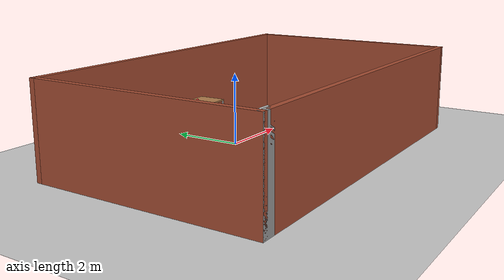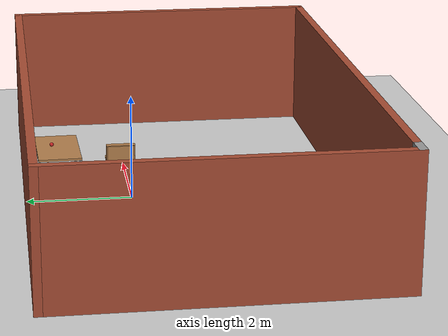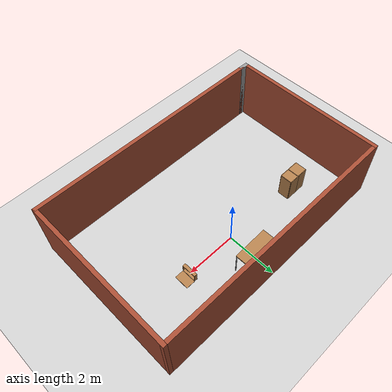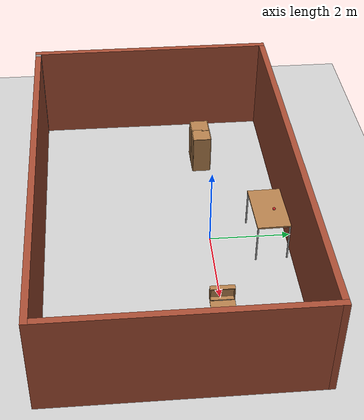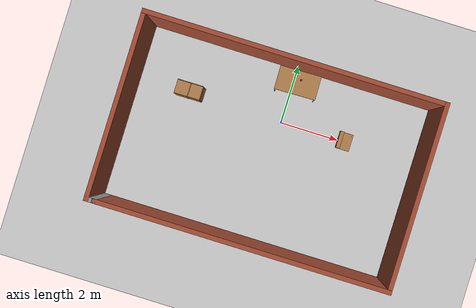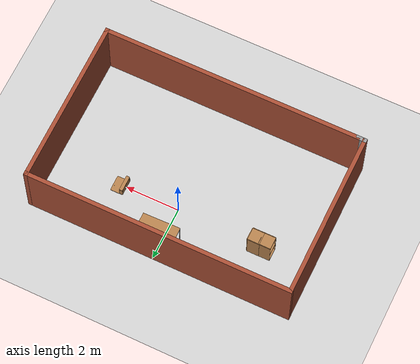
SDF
<sdf version="1.6">
 <world name="default">
  <light name="sun" type="directional">
   <pose>0 0 10 0 -0 0</pose>
   <diffuse>0.8 0.8 0.8 1</diffuse>
   <specular>0.1 0.1 0.1 1</specular>
   <attenuation>
    <range>1000</range>
    <constant>0.9</constant>
    <linear>0.01</linear>
    <quadratic>0.001</quadratic>
   </attenuation>
   <direction>-0.5 0.5 -1</direction>
  </light>
  <model name="ground_plane">
   <static>1</static>
   <link name="link">
    <collision name="collision">
     <geometry><plane><normal>0 0 1</normal><size>100 100</size></plane></geometry>
     <surface><friction><ode><mu>100</mu><mu2>50</mu2></ode></friction></surface>
    </collision>
    <visual name="visual">
     <cast_shadows>0</cast_shadows>
     <geometry><plane><normal>0 0 1</normal><size>100 100</size></plane></geometry>
     <material>
      <script><uri>file://media/materials/scripts/gazebo.material</uri><name>Gazebo/Grey</name></script>
     </material>
    </visual>
   </link>
  </model>
  <gravity>0 0 -9.8</gravity>
  <magnetic_field>6e-06 2.3e-05 -4.2e-05</magnetic_field>
  <atmosphere type="adiabatic"/>
  <physics name="default_physics" default="0" type="ode">
   <max_step_size>0.001</max_step_size>
   <real_time_factor>1</real_time_factor>
   <real_time_update_rate>1000</real_time_update_rate>
  </physics>
  <scene><ambient>0.4 0.4 0.4 1</ambient><background>0.7 0.7 0.7 1</background><shadows>1</shadows></scene>
  <spherical_coordinates>
   <surface_model>EARTH_WGS84</surface_model>
   <latitude_deg>0</latitude_deg>
   <longitude_deg>0</longitude_deg>
   <elevation>0</elevation>
   <heading_deg>0</heading_deg>
  </spherical_coordinates>
  <model name="table">
   <static>0</static>
   <link name="link">
    <collision name="surface">
     <pose>0 0 1 0 -0 0</pose>
     <geometry><box><size>1.5 0.8 0.03</size></box></geometry>
     <surface><friction><ode><mu>0.6</mu><mu2>0.6</mu2></ode></friction></surface>
    </collision>
    <visual name="visual1">
     <pose>0 0 1 0 -0 0</pose>
     <geometry><box><size>1.4 0.8 0.04</size></box></geometry>
     <material>
      <script><uri>file://media/materials/scripts/gazebo.material</uri><name>Gazebo/Wood</name></script>
     </material>
    </visual>
    <collision name="front_left_leg">
     <pose>0.68 0.38 0.5 0 -0 0</pose>
     <geometry><cylinder><radius>0.02</radius><length>1</length></cylinder></geometry>
    </collision>
    <visual name="front_left_leg">
     <pose>0.68 0.38 0.5 0 -0 0</pose>
     <geometry><cylinder><radius>0.02</radius><length>1</length></cylinder></geometry>
     <material>
      <script><uri>file://media/materials/scripts/gazebo.material</uri><name>Gazebo/Grey</name></script>
     </material>
    </visual>
    <collision name="front_right_leg">
     <pose>0.68 -0.38 0.5 0 -0 0</pose>
     <geometry><cylinder><radius>0.02</radius><length>1</length></cylinder></geometry>
    </collision>
    <visual name="front_right_leg">
     <pose>0.68 -0.38 0.5 0 -0 0</pose>
     <geometry><cylinder><radius>0.02</radius><length>1</length></cylinder></geometry>
     <material>
      <script><uri>file://media/materials/scripts/gazebo.material</uri><name>Gazebo/Grey</name></script>
     </material>
    </visual>
    <collision name="back_right_leg">
     <pose>-0.68 -0.38 0.5 0 -0 0</pose>
     <geometry><cylinder><radius>0.02</radius><length>1</length></cylinder></geometry>
    </collision>
    <visual name="back_right_leg">
     <pose>-0.68 -0.38 0.5 0 -0 0</pose>
     <geometry><cylinder><radius>0.02</radius><length>1</length></cylinder></geometry>
     <material>
      <script><uri>file://media/materials/scripts/gazebo.material</uri><name>Gazebo/Grey</name></script>
     </material>
    </visual>
    <collision name="back_left_leg">
     <pose>-0.68 0.38 0.5 0 -0 0</pose>
     <geometry><cylinder><radius>0.02</radius><length>1</length></cylinder></geometry>
    </collision>
    <visual name="back_left_leg">
     <pose>-0.68 0.38 0.5 0 -0 0</pose>
     <geometry><cylinder><radius>0.02</radius><length>1</length></cylinder></geometry>
     <material>
      <script><uri>file://media/materials/scripts/gazebo.material</uri><name>Gazebo/Grey</name></script>
     </material>
    </visual>
    <inertial>
     <inertia><ixx>1</ixx><ixy>0</ixy><ixz>0</ixz><iyy>1</iyy><iyz>0</iyz><izz>1</izz></inertia>
     <mass>1</mass>
    </inertial>
   </link>
   <pose>0.133701 1.38314 0 0 -0 0.022122</pose>
  </model>
  <model name="cricket_ball">
   <link name="link">
    <pose>0 0 0.0375 0 -0 0</pose>
    <inertial>
     <mass>0.1467</mass>
     <inertia>
      <ixx>8.25187e-05</ixx>
      <ixy>0</ixy>
      <ixz>0</ixz>
      <iyy>8.25187e-05</iyy>
      <iyz>0</iyz>
      <izz>8.25187e-05</izz>
     </inertia>
    </inertial>
    <collision name="collision">
     <geometry><sphere><radius>0.0375</radius></sphere></geometry>
     <surface>
      <contact>
       <poissons_ratio>0.347</poissons_ratio>
       <elastic_modulus>8.8e+09</elastic_modulus>
       <ode><kp>100000</kp><kd>100</kd><max_vel>100</max_vel><min_depth>0.001</min_depth></ode>
      </contact>
      <friction>
       <torsional>
        <coefficient>1</coefficient>
        <use_patch_radius>0</use_patch_radius>
        <surface_radius>0.01</surface_radius>
       </torsional>
      </friction>
     </surface>
    </collision>
    <visual name="visual">
     <geometry><sphere><radius>0.0375</radius></sphere></geometry>
     <material>
      <script><uri>file://media/materials/scripts/gazebo.material</uri><name>Gazebo/Red</name></script>
     </material>
    </visual>
    <velocity_decay><linear>0</linear><angular>0.005</angular></velocity_decay>
   </link>
   <pose>0.2227 1.47846 1.01781 -0.356125 -0.164599 0.03857</pose>
  </model>
  <model name="myRoom">
   <pose>-0.172927 -1.08456 0 0 -0 0</pose>
   <link name="Wall_10">
    <collision name="Wall_10_Collision">
     <geometry><box><size>0.4 0.15 2.5</size></box></geometry>
     <pose>0 0 1.25 0 -0 0</pose>
    </collision>
    <visual name="Wall_10_Visual">
     <pose>0 0 1.25 0 -0 0</pose>
     <geometry><box><size>0.4 0.15 2.5</size></box></geometry>
     <material>
      <script><uri>file://media/materials/scripts/gazebo.material</uri><name>Gazebo/Grey</name></script>
      <ambient>1 1 1 1</ambient>
     </material>
    </visual>
    <pose>-4.8 -3.05 0 0 -0 0</pose>
   </link>
   <link name="Wall_6">
    <collision name="Wall_6_Collision">
     <geometry><box><size>9.75 0.15 2.5</size></box></geometry>
     <pose>0 0 1.25 0 -0 0</pose>
    </collision>
    <visual name="Wall_6_Visual">
     <pose>0 0 1.25 0 -0 0</pose>
     <geometry><box><size>9.75 0.15 2.5</size></box></geometry>
     <material>
      <script><uri>file://media/materials/scripts/gazebo.material</uri><name>Gazebo/Bricks</name></script>
      <ambient>1 1 1 1</ambient>
     </material>
    </visual>
    <pose>0.125 -3.05 0 0 -0 0</pose>
   </link>
   <link name="Wall_7">
    <collision name="Wall_7_Collision">
     <geometry><box><size>6.25 0.15 2.5</size></box></geometry>
     <pose>0 0 1.25 0 -0 0</pose>
    </collision>
    <visual name="Wall_7_Visual">
     <pose>0 0 1.25 0 -0 0</pose>
     <geometry><box><size>6.25 0.15 2.5</size></box></geometry>
     <material>
      <script><uri>file://media/materials/scripts/gazebo.material</uri><name>Gazebo/Bricks</name></script>
      <ambient>1 1 1 1</ambient>
     </material>
    </visual>
    <pose>4.925 0 0 0 -0 1.5708</pose>
   </link>
   <link name="Wall_8">
    <collision name="Wall_8_Collision">
     <geometry><box><size>10 0.15 2.5</size></box></geometry>
     <pose>0 0 1.25 0 -0 0</pose>
    </collision>
    <visual name="Wall_8_Visual">
     <pose>0 0 1.25 0 -0 0</pose>
     <geometry><box><size>10 0.15 2.5</size></box></geometry>
     <material>
      <script><uri>file://media/materials/scripts/gazebo.material</uri><name>Gazebo/Bricks</name></script>
      <ambient>1 1 1 1</ambient>
     </material>
    </visual>
    <pose>0 3.05 0 0 -0 3.14159</pose>
   </link>
   <link name="Wall_9">
    <collision name="Wall_9_Collision">
     <geometry><box><size>6.25 0.15 2.5</size></box></geometry>
     <pose>0 0 1.25 0 -0 0</pose>
    </collision>
    <visual name="Wall_9_Visual">
     <pose>0 0 1.25 0 -0 0</pose>
     <geometry><box><size>6.25 0.15 2.5</size></box></geometry>
     <material>
      <script><uri>file://media/materials/scripts/gazebo.material</uri><name>Gazebo/Bricks</name></script>
      <ambient>1 1 1 1</ambient>
     </material>
    </visual>
    <pose>-4.925 0 0 0 0 -1.5708</pose>
   </link>
   <static>1</static>
  </model>
  <model name="cabinet">
   <static>1</static>
   <link name="cabinet_bottom_plate">
    <inertial>
     <pose>0 0 -1 0 -0 0</pose>
     <inertia><ixx>2.05</ixx><ixy>0</ixy><ixz>0</ixz><iyy>2.05</iyy><iyz>0</iyz><izz>2.05</izz></inertia>
     <mass>25</mass>
    </inertial>
    <collision name="cabinet_bottom_plate_geom">
     <pose>0 0 0.01 0 -0 0</pose>
     <geometry><box><size>0.45 0.45 0.02</size></box></geometry>
    </collision>
    <visual name="cabinet_bottom_plate_geom_visual">
     <pose>0 0 0.01 0 -0 0</pose>
     <geometry><box><size>0.45 0.45 0.02</size></box></geometry>
     <material>
      <script><uri>file://media/materials/scripts/gazebo.material</uri><name>Gazebo/Wood</name></script>
     </material>
    </visual>
    <collision name="cabinet_bottom_plate_geom_cabinet_back_plate">
     <pose>0.235 0 0.51 0 -0 0</pose>
     <geometry><box><size>0.02 0.45 1.02</size></box></geometry>
    </collision>
    <visual name="cabinet_bottom_plate_geom_cabinet_back_plate_visual">
     <pose>0.235 0 0.51 0 -0 0</pose>
     <geometry><box><size>0.02 0.45 1.02</size></box></geometry>
     <material>
      <script><uri>file://media/materials/scripts/gazebo.material</uri><name>Gazebo/Wood</name></script>
     </material>
    </visual>
    <collision name="cabinet_bottom_plate_geom_cabinet_left_plate">
     <pose>0 0.235 0.51 0 -0 0</pose>
     <geometry><box><size>0.45 0.02 1.02</size></box></geometry>
    </collision>
    <visual name="cabinet_bottom_plate_geom_cabinet_left_plate_visual">
     <pose>0 0.235 0.51 0 -0 0</pose>
     <geometry><box><size>0.45 0.02 1.02</size></box></geometry>
     <material>
      <script><uri>file://media/materials/scripts/gazebo.material</uri><name>Gazebo/Wood</name></script>
     </material>
    </visual>
    <collision name="cabinet_bottom_plate_geom_cabinet_middle_plate">
     <pose>0 0 0.51 0 -0 0</pose>
     <geometry><box><size>0.45 0.45 0.02</size></box></geometry>
    </collision>
    <visual name="cabinet_bottom_plate_geom_cabinet_middle_plate_visual">
     <pose>0 0 0.51 0 -0 0</pose>
     <geometry><box><size>0.45 0.45 0.02</size></box></geometry>
     <material>
      <script><uri>file://media/materials/scripts/gazebo.material</uri><name>Gazebo/Wood</name></script>
     </material>
    </visual>
    <collision name="cabinet_bottom_plate_geom_cabinet_right_plate">
     <pose>0 -0.235 0.51 0 -0 0</pose>
     <geometry><box><size>0.45 0.02 1.02</size></box></geometry>
    </collision>
    <visual name="cabinet_bottom_plate_geom_cabinet_right_plate_visual">
     <pose>0 -0.235 0.51 0 -0 0</pose>
     <geometry><box><size>0.45 0.02 1.02</size></box></geometry>
     <material>
      <script><uri>file://media/materials/scripts/gazebo.material</uri><name>Gazebo/Wood</name></script>
     </material>
    </visual>
    <collision name="cabinet_bottom_plate_geom_cabinet_top_plate">
     <pose>0 0 1.01 0 -0 0</pose>
     <geometry><box><size>0.45 0.45 0.02</size></box></geometry>
    </collision>
    <visual name="cabinet_bottom_plate_geom_cabinet_top_plate_visual">
     <pose>0 0 1.01 0 -0 0</pose>
     <geometry><box><size>0.45 0.45 0.02</size></box></geometry>
     <material>
      <script><uri>file://media/materials/scripts/gazebo.material</uri><name>Gazebo/Wood</name></script>
     </material>
    </visual>
   </link>
   <pose>-3.4399 0.104103 0 0 -0 0</pose>
  </model>
  <model name="cabinet_2">
   <static>1</static>
   <link name="cabinet_bottom_plate">
    <inertial>
     <pose>0 0 -1 0 -0 0</pose>
     <inertia><ixx>2.05</ixx><ixy>0</ixy><ixz>0</ixz><iyy>2.05</iyy><iyz>0</iyz><izz>2.05</izz></inertia>
     <mass>25</mass>
    </inertial>
    <collision name="cabinet_bottom_plate_geom">
     <pose>0 0 0.01 0 -0 0</pose>
     <geometry><box><size>0.45 0.45 0.02</size></box></geometry>
    </collision>
    <visual name="cabinet_bottom_plate_geom_visual">
     <pose>0 0 0.01 0 -0 0</pose>
     <geometry><box><size>0.45 0.45 0.02</size></box></geometry>
     <material>
      <script><uri>file://media/materials/scripts/gazebo.material</uri><name>Gazebo/Wood</name></script>
     </material>
    </visual>
    <collision name="cabinet_bottom_plate_geom_cabinet_back_plate">
     <pose>0.235 0 0.51 0 -0 0</pose>
     <geometry><box><size>0.02 0.45 1.02</size></box></geometry>
    </collision>
    <visual name="cabinet_bottom_plate_geom_cabinet_back_plate_visual">
     <pose>0.235 0 0.51 0 -0 0</pose>
     <geometry><box><size>0.02 0.45 1.02</size></box></geometry>
     <material>
      <script><uri>file://media/materials/scripts/gazebo.material</uri><name>Gazebo/Wood</name></script>
     </material>
    </visual>
    <collision name="cabinet_bottom_plate_geom_cabinet_left_plate">
     <pose>0 0.235 0.51 0 -0 0</pose>
     <geometry><box><size>0.45 0.02 1.02</size></box></geometry>
    </collision>
    <visual name="cabinet_bottom_plate_geom_cabinet_left_plate_visual">
     <pose>0 0.235 0.51 0 -0 0</pose>
     <geometry><box><size>0.45 0.02 1.02</size></box></geometry>
     <material>
      <script><uri>file://media/materials/scripts/gazebo.material</uri><name>Gazebo/Wood</name></script>
     </material>
    </visual>
    <collision name="cabinet_bottom_plate_geom_cabinet_middle_plate">
     <pose>0 0 0.51 0 -0 0</pose>
     <geometry><box><size>0.45 0.45 0.02</size></box></geometry>
    </collision>
    <visual name="cabinet_bottom_plate_geom_cabinet_middle_plate_visual">
     <pose>0 0 0.51 0 -0 0</pose>
     <geometry><box><size>0.45 0.45 0.02</size></box></geometry>
     <material>
      <script><uri>file://media/materials/scripts/gazebo.material</uri><name>Gazebo/Wood</name></script>
     </material>
    </visual>
    <collision name="cabinet_bottom_plate_geom_cabinet_right_plate">
     <pose>0 -0.235 0.51 0 -0 0</pose>
     <geometry><box><size>0.45 0.02 1.02</size></box></geometry>
    </collision>
    <visual name="cabinet_bottom_plate_geom_cabinet_right_plate_visual">
     <pose>0 -0.235 0.51 0 -0 0</pose>
     <geometry><box><size>0.45 0.02 1.02</size></box></geometry>
     <material>
      <script><uri>file://media/materials/scripts/gazebo.material</uri><name>Gazebo/Wood</name></script>
     </material>
    </visual>
    <collision name="cabinet_bottom_plate_geom_cabinet_top_plate">
     <pose>0 0 1.01 0 -0 0</pose>
     <geometry><box><size>0.45 0.45 0.02</size></box></geometry>
    </collision>
    <visual name="cabinet_bottom_plate_geom_cabinet_top_plate_visual">
     <pose>0 0 1.01 0 -0 0</pose>
     <geometry><box><size>0.45 0.45 0.02</size></box></geometry>
     <material>
      <script><uri>file://media/materials/scripts/gazebo.material</uri><name>Gazebo/Wood</name></script>
     </material>
    </visual>
   </link>
   <pose>-3.02384 0.108165 0 0 -0 0</pose>
  </model>
  <model name="wooden_case_0">
   <link name="base">
    <pose>0 0 0.024 0 -0 0</pose>
    <inertial>
     <pose>-0.022184 0 0.171592 0 -0 0</pose>
     <mass>3.96264</mass>
     <inertia>
      <ixx>0.213536</ixx>
      <ixy>0</ixy>
      <ixz>0.000779377</ixz>
      <iyy>0.0708943</iyy>
      <iyz>0</iyz>
      <izz>0.154604</izz>
     </inertia>
    </inertial>
    <collision name="collision_back">
     <pose>-0.053975 0 0.1778 0 -0 0</pose>
     <geometry><box><size>0.01905 0.5461 0.3175</size></box></geometry>
     <surface>
      <contact>
       <poissons_ratio>0.347</poissons_ratio>
       <elastic_modulus>8.8e+09</elastic_modulus>
       <ode><kp>100000</kp><kd>100</kd><max_vel>100</max_vel><min_depth>0.001</min_depth></ode>
      </contact>
      <friction>
       <torsional>
        <coefficient>1</coefficient>
        <use_patch_radius>0</use_patch_radius>
        <surface_radius>0.01</surface_radius>
       </torsional>
      </friction>
     </surface>
    </collision>
    <visual name="visual_back">
     <pose>-0.053975 0 0.1778 0 -0 0</pose>
     <geometry><box><size>0.01905 0.5461 0.3175</size></box></geometry>
     <material>
      <script><uri>file://media/materials/scripts/gazebo.material</uri><name>Gazebo/Wood</name></script>
     </material>
    </visual>
    <collision name="collision_bottom">
     <pose>0 0 0.009525 0 -0 0</pose>
     <geometry><box><size>0.127 0.5842 0.01905</size></box></geometry>
     <surface>
      <contact>
       <poissons_ratio>0.347</poissons_ratio>
       <elastic_modulus>8.8e+09</elastic_modulus>
       <ode><kp>100000</kp><kd>100</kd><max_vel>100</max_vel><min_depth>0.001</min_depth></ode>
      </contact>
      <friction>
       <torsional>
        <coefficient>1</coefficient>
        <use_patch_radius>0</use_patch_radius>
        <surface_radius>0.01</surface_radius>
       </torsional>
      </friction>
     </surface>
    </collision>
    <visual name="visual_bottom">
     <pose>0 0 0.009525 0 -0 0</pose>
     <geometry><box><size>0.127 0.5842 0.01905</size></box></geometry>
     <material>
      <script><uri>file://media/materials/scripts/gazebo.material</uri><name>Gazebo/Wood</name></script>
     </material>
    </visual>
    <collision name="collision_top">
     <pose>0 0 0.346075 0 -0 0</pose>
     <geometry><box><size>0.127 0.5842 0.01905</size></box></geometry>
     <surface>
      <contact>
       <poissons_ratio>0.347</poissons_ratio>
       <elastic_modulus>8.8e+09</elastic_modulus>
       <ode><kp>100000</kp><kd>100</kd><max_vel>100</max_vel><min_depth>0.001</min_depth></ode>
      </contact>
      <friction>
       <torsional>
        <coefficient>1</coefficient>
        <use_patch_radius>0</use_patch_radius>
        <surface_radius>0.01</surface_radius>
       </torsional>
      </friction>
     </surface>
    </collision>
    <visual name="visual_top">
     <pose>0 0 0.346075 0 -0 0</pose>
     <geometry><box><size>0.127 0.5842 0.01905</size></box></geometry>
     <material>
      <script><uri>file://media/materials/scripts/gazebo.material</uri><name>Gazebo/Wood</name></script>
     </material>
    </visual>
    <collision name="collision_left">
     <pose>0 -0.282575 0.1778 0 -0 0</pose>
     <geometry><box><size>0.127 0.01905 0.3175</size></box></geometry>
     <surface>
      <contact>
       <poissons_ratio>0.347</poissons_ratio>
       <elastic_modulus>8.8e+09</elastic_modulus>
       <ode><kp>100000</kp><kd>100</kd><max_vel>100</max_vel><min_depth>0.001</min_depth></ode>
      </contact>
      <friction>
       <torsional>
        <coefficient>1</coefficient>
        <use_patch_radius>0</use_patch_radius>
        <surface_radius>0.01</surface_radius>
       </torsional>
      </friction>
     </surface>
    </collision>
    <visual name="visual_left">
     <pose>0 -0.282575 0.1778 0 -0 0</pose>
     <geometry><box><size>0.127 0.01905 0.3175</size></box></geometry>
     <material>
      <script><uri>file://media/materials/scripts/gazebo.material</uri><name>Gazebo/Wood</name></script>
     </material>
    </visual>
    <collision name="collision_right">
     <pose>0 0.282575 0.1778 0 -0 0</pose>
     <geometry><box><size>0.127 0.01905 0.3175</size></box></geometry>
     <surface>
      <contact>
       <poissons_ratio>0.347</poissons_ratio>
       <elastic_modulus>8.8e+09</elastic_modulus>
       <ode><kp>100000</kp><kd>100</kd><max_vel>100</max_vel><min_depth>0.001</min_depth></ode>
      </contact>
      <friction>
       <torsional>
        <coefficient>1</coefficient>
        <use_patch_radius>0</use_patch_radius>
        <surface_radius>0.01</surface_radius>
       </torsional>
      </friction>
     </surface>
    </collision>
    <visual name="visual_right">
     <pose>0 0.282575 0.1778 0 -0 0</pose>
     <geometry><box><size>0.127 0.01905 0.3175</size></box></geometry>
     <material>
      <script><uri>file://media/materials/scripts/gazebo.material</uri><name>Gazebo/Wood</name></script>
     </material>
    </visual>
    <collision name="collision_block_left">
     <pose>0.0095 -0.2151 -0.012 0 -0 0</pose>
     <geometry><box><size>0.108 0.05 0.024</size></box></geometry>
     <surface>
      <contact>
       <poissons_ratio>0.347</poissons_ratio>
       <elastic_modulus>8.8e+09</elastic_modulus>
       <ode><kp>100000</kp><kd>100</kd><max_vel>100</max_vel><min_depth>0.001</min_depth></ode>
      </contact>
      <friction>
       <torsional>
        <coefficient>1</coefficient>
        <use_patch_radius>0</use_patch_radius>
        <surface_radius>0.01</surface_radius>
       </torsional>
      </friction>
     </surface>
    </collision>
    <visual name="visual_block_left">
     <pose>0.0095 -0.2151 -0.012 0 -0 0</pose>
     <geometry><box><size>0.108 0.05 0.024</size></box></geometry>
     <material>
      <script><uri>file://media/materials/scripts/gazebo.material</uri><name>Gazebo/Wood</name></script>
     </material>
    </visual>
    <collision name="collision_block_right">
     <pose>0.0095 0.2151 -0.012 0 -0 0</pose>
     <geometry><box><size>0.108 0.05 0.024</size></box></geometry>
     <surface>
      <contact>
       <poissons_ratio>0.347</poissons_ratio>
       <elastic_modulus>8.8e+09</elastic_modulus>
       <ode><kp>100000</kp><kd>100</kd><max_vel>100</max_vel><min_depth>0.001</min_depth></ode>
      </contact>
      <friction>
       <torsional>
        <coefficient>1</coefficient>
        <use_patch_radius>0</use_patch_radius>
        <surface_radius>0.01</surface_radius>
       </torsional>
      </friction>
     </surface>
    </collision>
    <visual name="visual_block_right">
     <pose>0.0095 0.2151 -0.012 0 -0 0</pose>
     <geometry><box><size>0.108 0.05 0.024</size></box></geometry>
     <material>
      <script><uri>file://media/materials/scripts/gazebo.material</uri><name>Gazebo/Wood</name></script>
     </material>
    </visual>
   </link>
   <link name="lid">
    <pose>0.243775 0 0.009525 0 -0 0</pose>
    <inertial>
     <mass>1.97874</mass>
     <inertia>
      <ixx>0.0563367</ixx>
      <ixy>0</ixy>
      <ixz>0</ixz>
      <iyy>0.020911</iyy>
      <iyz>0</iyz>
      <izz>0.0771281</izz>
     </inertia>
    </inertial>
    <collision name="collision">
     <geometry><box><size>0.3556 0.5842 0.01905</size></box></geometry>
     <surface>
      <contact>
       <poissons_ratio>0.347</poissons_ratio>
       <elastic_modulus>8.8e+09</elastic_modulus>
       <ode><kp>100000</kp><kd>100</kd><max_vel>100</max_vel><min_depth>0.001</min_depth></ode>
      </contact>
      <friction>
       <torsional>
        <coefficient>1</coefficient>
        <use_patch_radius>0</use_patch_radius>
        <surface_radius>0.01</surface_radius>
       </torsional>
      </friction>
     </surface>
    </collision>
    <visual name="visual">
     <geometry><box><size>0.3556 0.5842 0.01905</size></box></geometry>
     <material>
      <script><uri>file://media/materials/scripts/gazebo.material</uri><name>Gazebo/Wood</name></script>
     </material>
    </visual>
    <visual name="tee_nut_1">
     <pose>0.122 -0.216 0 0 -0 0</pose>
     <geometry><cylinder><radius>0.00635</radius><length>0.0192405</length></cylinder></geometry>
     <material>
      <script><uri>file://media/materials/scripts/gazebo.material</uri><name>Gazebo/Grey</name></script>
     </material>
    </visual>
    <visual name="tee_nut_2">
     <pose>0.122 -0.088 0 0 -0 0</pose>
     <geometry><cylinder><radius>0.00635</radius><length>0.0192405</length></cylinder></geometry>
     <material>
      <script><uri>file://media/materials/scripts/gazebo.material</uri><name>Gazebo/Grey</name></script>
     </material>
    </visual>
    <visual name="tee_nut_3">
     <pose>0.122 0.088 0 0 -0 0</pose>
     <geometry><cylinder><radius>0.00635</radius><length>0.0192405</length></cylinder></geometry>
     <material>
      <script><uri>file://media/materials/scripts/gazebo.material</uri><name>Gazebo/Grey</name></script>
     </material>
    </visual>
    <visual name="tee_nut_4">
     <pose>0.122 0.216 0 0 -0 0</pose>
     <geometry><cylinder><radius>0.00635</radius><length>0.0192405</length></cylinder></geometry>
     <material>
      <script><uri>file://media/materials/scripts/gazebo.material</uri><name>Gazebo/Grey</name></script>
     </material>
    </visual>
   </link>
   <joint name="lid_hinge" type="revolute">
    <pose>-0.1778 0 0.01905 0 -0 0</pose>
    <parent>base</parent>
    <child>lid</child>
    <axis>
     <xyz>0 1 0</xyz>
     <limit><upper>0.523599</upper><lower>-1.5708</lower></limit>
     <use_parent_model_frame>0</use_parent_model_frame>
     <dynamics><spring_reference>0</spring_reference><spring_stiffness>0</spring_stiffness></dynamics>
    </axis>
   </joint>
   <pose>2.06756 0.034419 -0.001057 0 -0.000429 0</pose>
  </model>
 </world>
</sdf>
